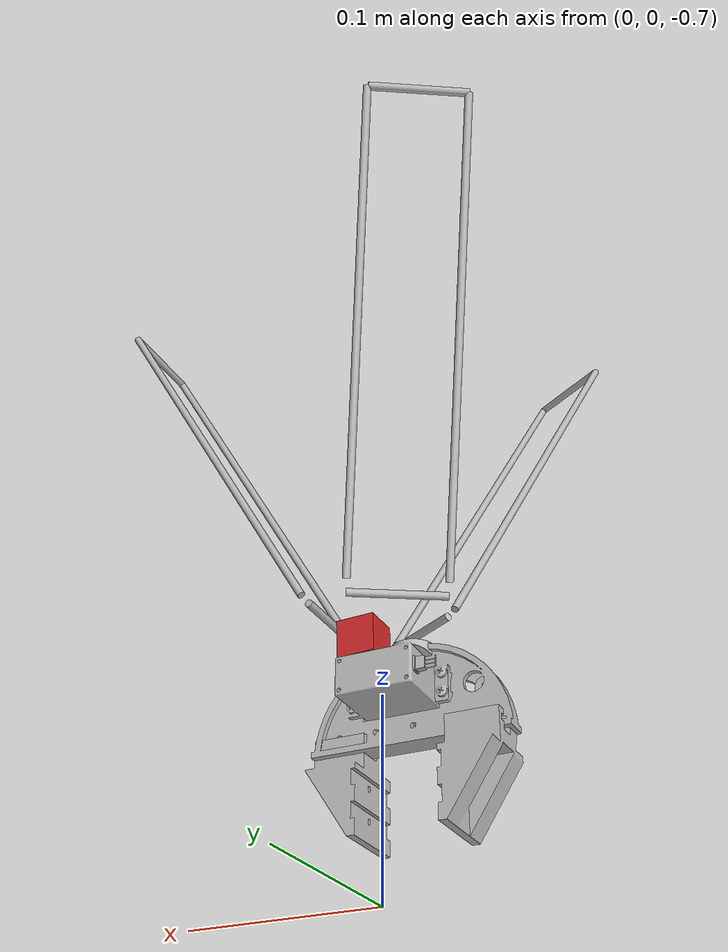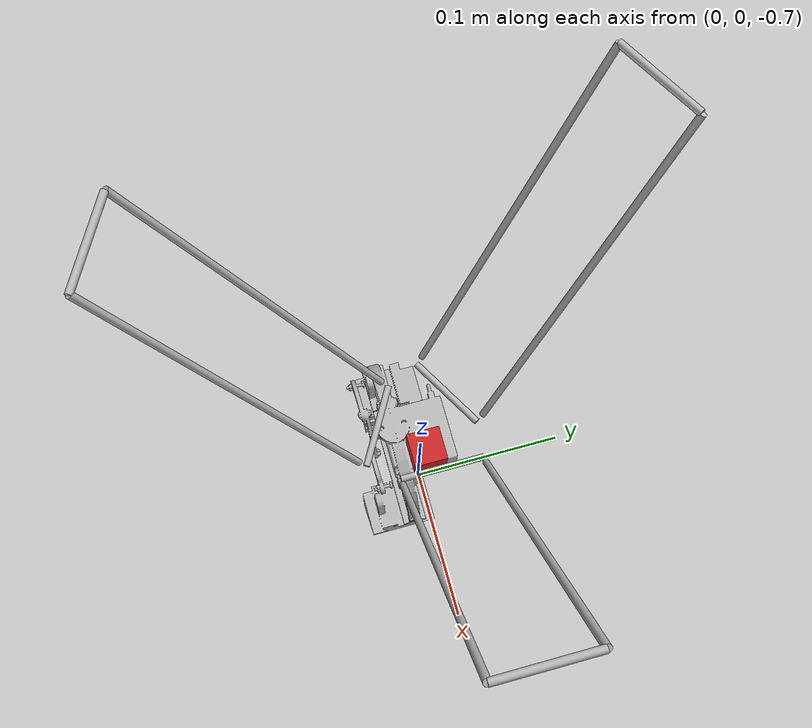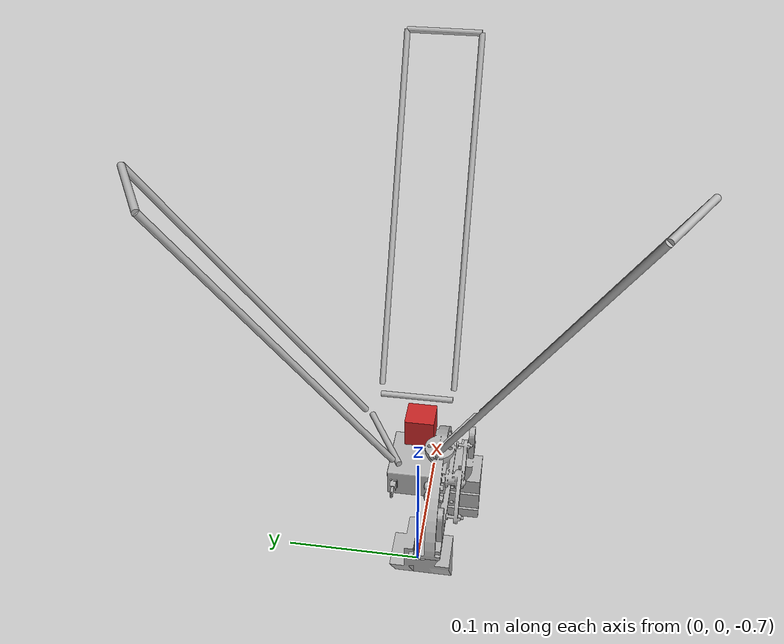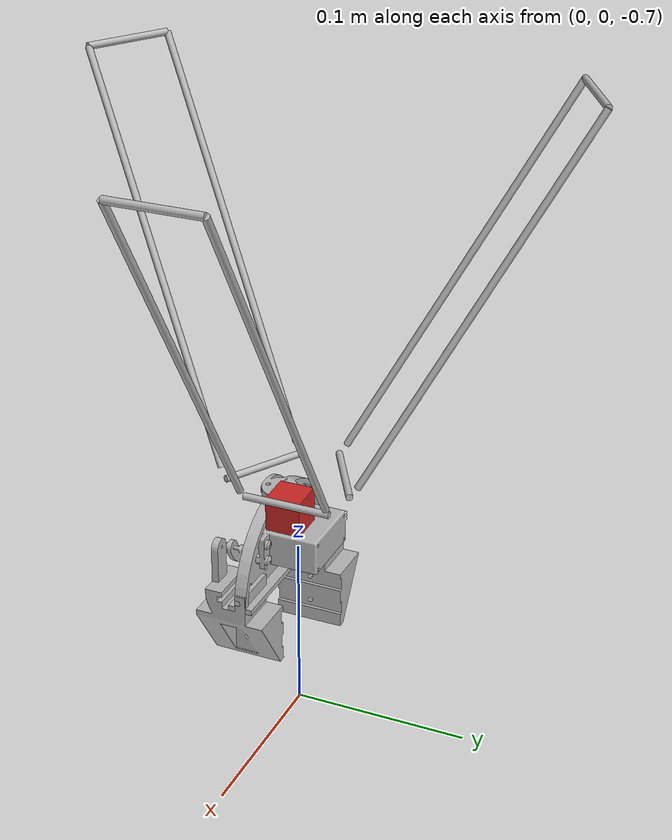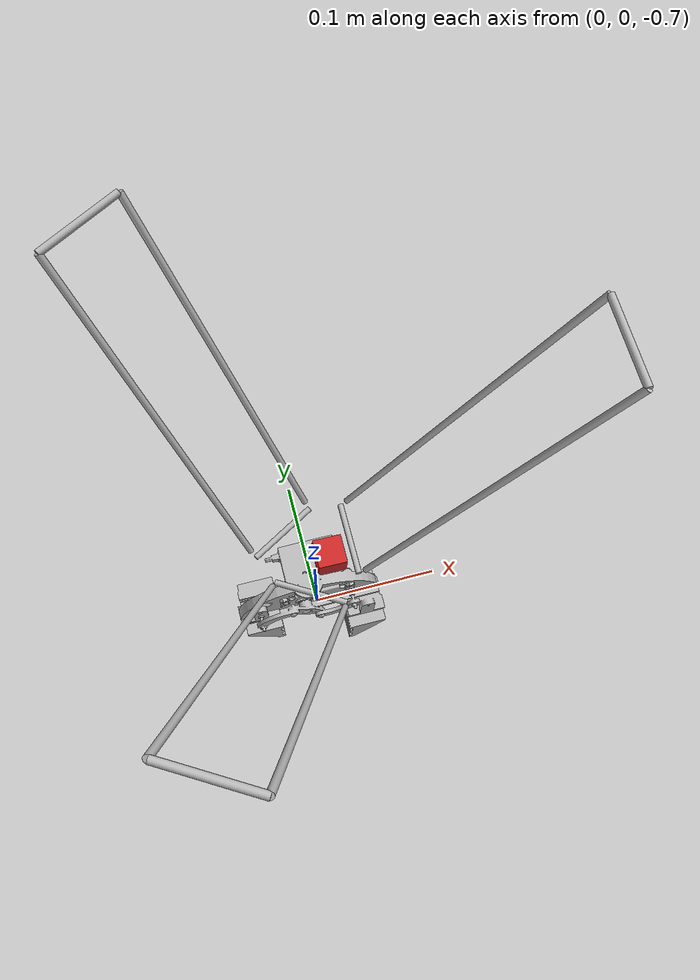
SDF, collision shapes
<sdf version='1.5'>
  <model name='FlyingDeltaArmLow_test'>
  <link name='con1'>
      <pose frame=''>0.1525 -0.000228 -0.346913429511 0.534996 -0 1.57</pose>
      <inertial>
        <pose frame=''>0.005 0 0 3.14159 1.57079 3.14159</pose>
        <mass>0.01</mass>
        <inertia>
          <ixx>2.093e-6</ixx>
          <ixy>0</ixy>
          <ixz>0</ixz>
          <iyy>2.093e-6</iyy>
          <iyz>0</iyz>
          <izz>2e-08</izz>
        </inertia>
      </inertial>
      <collision name='con1_collision'>
        <pose frame=''>0.005 0 0 3.14159 1.57079 3.14159</pose>
        <geometry>
          <cylinder>
            <length>0.05</length>
            <radius>0.002</radius>
          </cylinder>
        </geometry>
      </collision>
      <visual name='con1_visual'>
        <pose frame=''>0.005 0 0 3.14159 1.57079 3.14159</pose>
        <geometry>
          <cylinder>
            <length>0.05</length>
            <radius>0.002</radius>
          </cylinder>
        </geometry>
      </visual>
      <gravity>1</gravity>
    </link>

    <link name='lleg_12'>
      <pose frame=''>0.1525 0.029772 -0.346913429511 0.534996 -0 1.57</pose>
      <inertial>
        <pose frame=''>0 0 -0.12 0 -0 0</pose>
        <mass>0.012</mass>
        <inertia>
          <ixx>5.7612e-5</ixx>
          <ixy>0</ixy>
          <ixz>0</ixz>
          <iyy>5.7612e-5</iyy>
          <iyz>0</iyz>
          <izz>2.4e-08</izz>
        </inertia>
      </inertial>
      <collision name='lleg_12_collision'>
        <pose frame=''>0 0 -0.12 0 -0 0</pose>
        <geometry>
          <cylinder>
            <length>0.24</length>
            <radius>0.002</radius>
          </cylinder>
        </geometry>
      </collision>
      <visual name='lleg_12_visual'>
        <pose frame=''>0 0 -0.12 0 -0 0</pose>
        <geometry>
          <cylinder>
            <length>0.24</length>
            <radius>0.002</radius>
          </cylinder>
        </geometry>
      </visual>
      <gravity>1</gravity>
    </link>

<link name='lleg_1'>
      <pose frame=''>0.1525 -0.020228 -0.346913429511 0.534996 -0 1.57</pose>
      <inertial>
        <pose frame=''>0 0 -0.12 0 -0 0</pose>
        <mass>0.012</mass>
        <inertia>
          <ixx>5.7612e-5</ixx>
          <ixy>0</ixy>
          <ixz>0</ixz>
          <iyy>5.7612e-5</iyy>
          <iyz>0</iyz>
          <izz>2.4e-08</izz>
        </inertia>
      </inertial>
      <collision name='lleg_1_collision'>
        <pose frame=''>0 0 -0.12 0 -0 0</pose>
        <geometry>
          <cylinder>
            <length>0.24</length>
            <radius>0.002</radius>
          </cylinder>
        </geometry>
      </collision>
      <visual name='lleg_1_visual'>
        <pose frame=''>0 0 -0.12 0 -0 0</pose>
        <geometry>
          <cylinder>
            <length>0.24</length>
            <radius>0.002</radius>
          </cylinder>
        </geometry>
      </visual>
      <gravity>1</gravity>
    </link>

<link name='lleg_2'>
      <pose frame=''> -0.093767962 -0.121954874077  -0.346913429511 0.534996 -0 -0.524395</pose>
      <inertial>
        <pose frame=''>0 0 -0.12 0 -0 0</pose>
        <mass>0.012</mass>
        <inertia>
          <ixx>5.7612e-5</ixx>
          <ixy>0</ixy>
          <ixz>0</ixz>
          <iyy>5.7612e-5</iyy>
          <iyz>0</iyz>
          <izz>2.4e-08</izz>
        </inertia>
      </inertial>
      <collision name='lleg_2_collision'>
        <pose frame=''>0 0 -0.12 0 -0 0</pose>
        <geometry>
          <cylinder>
            <length>0.24</length>
            <radius>0.002</radius>
          </cylinder>
        </geometry>
      </collision>
      <visual name='lleg_2_visual'>
        <pose frame=''>0 0 -0.12 0 -0 0</pose>
        <geometry>
          <cylinder>
            <length>0.24</length>
            <radius>0.002</radius>
          </cylinder>
        </geometry>
      </visual>
      <gravity>1</gravity>
    </link>

<link name='lleg_3'>
      <pose frame=''>-0.05873204 0.1421828741 -0.346913429511 0.534996 -0 -2.61879</pose>
      <inertial>
        <pose frame=''>0 0 -0.12 0 -0 0</pose>
        <mass>0.012</mass>
        <inertia>
          <ixx>5.7612e-5</ixx>
          <ixy>0</ixy>
          <ixz>0</ixz>
          <iyy>5.7612e-5</iyy>
          <iyz>0</iyz>
          <izz>2.4e-08</izz>
        </inertia>
      </inertial>
      <collision name='lleg_3_collision'>
        <pose frame=''>0 0 -0.12 0 -0 0</pose>
        <geometry>
          <cylinder>
            <length>0.24</length>
            <radius>0.002</radius>
          </cylinder>
        </geometry>
      </collision>
      <visual name='lleg_3_visual'>
        <pose frame=''>0 0 -0.12 0 -0 0</pose>
        <geometry>
          <cylinder>
            <length>0.24</length>
            <radius>0.002</radius>
          </cylinder>
        </geometry>
      </visual>
      <gravity>1</gravity>
    </link>

    <link name='lleg_22'>
      <pose frame=''>-0.05046669 -0.146954874 -0.346913429511 0.534996 -0 -0.524395</pose>
      <inertial>
        <pose frame=''>0 0 -0.12 0 -0 0</pose>
        <mass>0.012</mass>
        <inertia>
          <ixx>5.7612e-5</ixx>
          <ixy>0</ixy>
          <ixz>0</ixz>
          <iyy>5.7612e-5</iyy>
          <iyz>0</iyz>
          <izz>2.4e-08</izz>
        </inertia>
      </inertial>
      <collision name='lleg_22_collision'>
        <pose frame=''>0 0 -0.12 0 -0 0</pose>
        <geometry>
          <cylinder>
            <length>0.24</length>
            <radius>0.002</radius>
          </cylinder>
        </geometry>
      </collision>
      <visual name='lleg_22_visual'>
        <pose frame=''>0 0 -0.12 0 -0 0</pose>
        <geometry>
          <cylinder>
            <length>0.24</length>
            <radius>0.002</radius>
          </cylinder>
        </geometry>
      </visual>
      <gravity>1</gravity>
    </link>

  <link name='lleg_32'>
      <pose frame=''>-0.10203331 0.1171828741 -0.346913429511 0.534996 -0 -2.61879</pose>
      <inertial>
        <pose frame=''>0 0 -0.12 0 -0 0</pose>
        <mass>0.012</mass>
        <inertia>
          <ixx>5.7612e-5</ixx>
          <ixy>0</ixy>
          <ixz>0</ixz>
          <iyy>5.7612e-5</iyy>
          <iyz>0</iyz>
          <izz>2.4e-08</izz>
        </inertia>
      </inertial>
      <collision name='lleg_32_collision'>
        <pose frame=''>0 0 -0.12 0 -0 0</pose>
        <geometry>
          <cylinder>
            <length>0.24</length>
            <radius>0.002</radius>
          </cylinder>
        </geometry>
      </collision>
      <visual name='lleg_32_visual'>
        <pose frame=''>0 0 -0.12 0 -0 0</pose>
        <geometry>
          <cylinder>
            <length>0.24</length>
            <radius>0.002</radius>
          </cylinder>
        </geometry>
      </visual>
      <gravity>1</gravity>
    </link>

    <link name='con13'>
      <pose frame=''>0.025857 0.029979 -0.558738 0.534996 -0 1.57</pose>
      <inertial>
        <pose frame=''>-0.025 0 0 3.14159 1.57079 3.14159</pose>
        <mass>0.01</mass>
        <inertia>
          <ixx>2.093e-6</ixx>
          <ixy>0</ixy>
          <ixz>0</ixz>
          <iyy>2.093e-6</iyy>
          <iyz>0</iyz>
          <izz>2e-08</izz>
        </inertia>
      </inertial>
      <collision name='con13_collision'>
        <pose frame=''>-0.025 0 0 3.14159 1.57079 3.14159</pose>
        <geometry>
          <cylinder>
            <length>0.05</length>
            <radius>0.002</radius>
          </cylinder>
        </geometry>
      </collision>
      <visual name='con13_visual'>
        <pose frame=''>-0.025 0 0 3.14159 1.57079 3.14159</pose>
        <geometry>
          <cylinder>
            <length>0.05</length>
            <radius>0.002</radius>
          </cylinder>
        </geometry>
      </visual>
      <gravity>1</gravity>
    </link>

    <link name='low_base'>
      <pose frame=''>0.025857 0.029979 -0.558738 0.034996 0 1.57</pose>
      <inertial>
        <pose frame=''>-0.03 0.03 0 0 -0 0</pose>
        <mass>0.1</mass>
        <inertia>
          <ixx>2.67e-04</ixx>
          <ixy>0</ixy>
          <ixz>0</ixz>
          <iyy>2.67e-04</iyy>
          <iyz>0</iyz>
          <izz>2.67e-04</izz>
        </inertia>
      </inertial>
      <visual name='low_base_visual_visual'>
        <pose frame=''>-0.07 -0.015 -0.012 0 -0 0</pose>
        <geometry>
          <mesh>
            <scale>0.001 0.001 0.001</scale>
            <uri>model://FlyingDelta/meshes/Platform.STL</uri>
          </mesh>
        </geometry>
        <material>
          <script>
            <uri>file://media/materials/scripts/gazebo.material</uri>
            <name>Gazebo/Red</name>
          </script>
        </material>
      </visual>
      <collision name='low_base_visual_visual_collision'>
       <pose frame=''>-0.03 0.015 -0.012 0 -0 0</pose>
        <geometry>
          <box>
            <size>0.02 0.02 0.02</size>
          </box>
        </geometry>
      </collision>
      <gravity>1</gravity>
    </link>

    <include>
      <uri>model://gripper1</uri>
      <pose>-0.01 -0.015 -0.57 1.5708 0 0</pose>
    </include>
    <joint name="marker_fixed" type="fixed">
      <parent>low_base</parent>
      <child>gripper1::base_link</child>
    </joint>

    <link name='con2'>
      <pose frame=''>-0.076052546208 -0.132182874077 -0.346913429511 0.534996 -0 -0.524395</pose>
      <inertial>
        <pose frame=''>0.005 0 0 3.14159 1.57079 3.14159</pose>
        <mass>0.01</mass>
        <inertia>
          <ixx>2.093e-6</ixx>
          <ixy>0</ixy>
          <ixz>0</ixz>
          <iyy>2.093e-6</iyy>
          <iyz>0</iyz>
          <izz>2e-08</izz>
        </inertia>
      </inertial>
      <collision name='con2_collision'>
        <pose frame=''>0.005 0 0 3.14159 1.57079 3.14159</pose>
        <geometry>
          <cylinder>
            <length>0.05</length>
            <radius>0.002</radius>
          </cylinder>
        </geometry>
      </collision>
      <visual name='con2_visual'>
        <pose frame=''>0.005 0 0 3.14159 1.57079 3.14159</pose>
        <geometry>
          <cylinder>
            <length>0.05</length>
            <radius>0.002</radius>
          </cylinder>
        </geometry>
      </visual>
      <gravity>0</gravity>
    </link>

    <link name='con23'>
      <pose frame=''>0.01303407558 -0.037382319 -0.558738 0.534996 -0 -0.524395</pose>
      <inertial>
        <pose frame=''>-0.025 0 0 3.14159 1.57079 3.14159</pose>
        <mass>0.01</mass>
        <inertia>
          <ixx>2.093e-6</ixx>
          <ixy>0</ixy>
          <ixz>0</ixz>
          <iyy>2.093e-6</iyy>
          <iyz>0</iyz>
          <izz>2e-08</izz>
        </inertia>
      </inertial>
      <collision name='con23_collision'>
        <pose frame=''>-0.025 0 0 3.14159 1.57079 3.14159</pose>
        <geometry>
          <cylinder>
            <length>0.05</length>
            <radius>0.002</radius>
          </cylinder>
        </geometry>
      </collision>
      <visual name='con23_visual'>
        <pose frame=''>-0.025 0 0 3.14159 1.57079 3.14159</pose>
        <geometry>
          <cylinder>
            <length>0.05</length>
            <radius>0.002</radius>
          </cylinder>
        </geometry>
      </visual>
      <gravity>1</gravity>
    </link>

    <link name='con3'>
      <pose frame=''>-0.0764474538 0.13195487408 -0.346913429511 0.534996 -0 -2.61879</pose>
      <inertial>
        <pose frame=''>0.005 0 0 3.14159 1.57079 3.14159</pose>
        <mass>0.01</mass>
        <inertia>
          <ixx>2.093e-6</ixx>
          <ixy>0</ixy>
          <ixz>0</ixz>
          <iyy>2.093e-6</iyy>
          <iyz>0</iyz>
          <izz>2e-08</izz>
        </inertia>
      </inertial>
      <collision name='con3_collision'>
        <pose frame=''>0.005 0 0 3.14159 1.57079 3.14159</pose>
        <geometry>
          <cylinder>
            <length>0.05</length>
            <radius>0.002</radius>
          </cylinder>
        </geometry>
      </collision>
      <visual name='con3_visual'>
        <pose frame=''>0.005 0 0 3.14159 1.57079 3.14159</pose>
        <geometry>
          <cylinder>
            <length>0.05</length>
            <radius>0.002</radius>
          </cylinder>
        </geometry>
      </visual>
      <gravity>1</gravity>
    </link>

    <link name='con33'>
      <pose frame=''>-0.0388911 0.007403319 -0.558738 0.534996 -0 -2.61879</pose>
      <inertial>
        <pose frame=''>-0.025 0 0 3.14159 1.57079 3.14159</pose>
        <mass>0.01</mass>
        <inertia>
          <ixx>2.093e-6</ixx>
          <ixy>0</ixy>
          <ixz>0</ixz>
          <iyy>2.093e-6</iyy>
          <iyz>0</iyz>
          <izz>2e-08</izz>
        </inertia>
      </inertial>
      <collision name='con33_collision'>
        <pose frame=''>-0.025 0 0 3.14159 1.57079 3.14159</pose>
        <geometry>
          <cylinder>
            <length>0.05</length>
            <radius>0.002</radius>
          </cylinder>
        </geometry>
      </collision>
      <visual name='con33_visual'>
        <pose frame=''>-0.025 0 0 3.14159 1.57079 3.14159</pose>
        <geometry>
          <cylinder>
            <length>0.05</length>
            <radius>0.002</radius>
          </cylinder>
        </geometry>
      </visual>
      <gravity>1</gravity>
    </link>

    <joint name='con2_lleg_3' type='revolute'>
      <child>lleg_32</child>
      <parent>con3</parent>
      <axis>
        <xyz>0.429542 -0.745358 0.509838</xyz>
        <limit>
          <lower>-1e+16</lower>
          <upper>1e+16</upper>
        </limit>
        <dynamics>
      	  <damping>0.001</damping>
      	  <friction>0</friction>
          <spring_reference>0</spring_reference>
          <spring_stiffness>0</spring_stiffness>
        </dynamics>
        <use_parent_model_frame>1</use_parent_model_frame>
      </axis>
    </joint>

    <joint name='con33_lleg_3' type='revolute'>
      <child>con33</child>
      <parent>lleg_32</parent>
      <axis>
        <xyz>0.429542 -0.745358 0.509838</xyz>
        <limit>
          <lower>-1e+16</lower>
          <upper>1e+16</upper>
        </limit>
        <dynamics>
      	  <damping>0.001</damping>
      	  <friction>0</friction>
          <spring_reference>0</spring_reference>
          <spring_stiffness>0</spring_stiffness>
        </dynamics>
        <use_parent_model_frame>1</use_parent_model_frame>
      </axis>
    </joint>

    <joint name='con_lleg_3' type='revolute'>
      <child>lleg_3</child>
      <parent>con3</parent>
      <axis>
        <xyz>0.429542 -0.745358 0.509838</xyz>
        <limit>
          <lower>-1e+16</lower>
          <upper>1e+16</upper>
        </limit>
        <dynamics>
      	  <damping>0.001</damping>
      	  <friction>0</friction>
          <spring_reference>0</spring_reference>
          <spring_stiffness>0</spring_stiffness>
        </dynamics>
        <use_parent_model_frame>1</use_parent_model_frame>
      </axis>
    </joint>

    <joint name='con33_lleg_32' type='revolute'>
      <child>con33</child>
      <parent>lleg_3</parent>
      <pose frame=''>-0.05 0 0 0 -0 0</pose>
      <axis>
        <xyz> 0.509838 0.86027 0.000685  </xyz>
        <limit>
          <lower>-100</lower>
          <upper>100</upper>
        </limit>
        <dynamics>
          <spring_reference>0</spring_reference>
          <spring_stiffness>0</spring_stiffness>
      	  <damping>0.001</damping>
      	  <friction>0</friction>
        </dynamics>
        <use_parent_model_frame>1</use_parent_model_frame>
      </axis>
    </joint>

    <joint name='con23_lleg_22' type='revolute'>
      <child>con23</child>
      <parent>lleg_2</parent>
      <pose frame=''>-0.05 0 0 0 -0 0</pose>
      <axis>
        <xyz> 0.509838 0.86027 0.000685 </xyz>
        <limit>
          <lower>-100</lower>
          <upper>100</upper>
        </limit>
        <dynamics>
          <spring_reference>0</spring_reference>
          <spring_stiffness>0</spring_stiffness>
      	  <damping>0.001</damping>
      	  <friction>0</friction>
        </dynamics>
        <use_parent_model_frame>1</use_parent_model_frame>
      </axis>
    </joint>
    <joint name='con_lleg_2' type='revolute'>
      <child>lleg_2</child>
      <parent>con2</parent>
      <axis>
        <xyz>0.430728 0.744673 0.509838</xyz>
        <limit>
          <lower>-1e+16</lower>
          <upper>1e+16</upper>
        </limit>
        <dynamics>
          <spring_reference>0</spring_reference>
          <spring_stiffness>0</spring_stiffness>
      	  <damping>0.001</damping>
      	  <friction>0</friction>
        </dynamics>
        <use_parent_model_frame>1</use_parent_model_frame>
      </axis>
    </joint>
    <joint name='con2_lleg_2' type='revolute'>
      <child>lleg_22</child>
      <parent>con2</parent>
      <axis>
        <xyz>0.430728 0.744673 0.509838</xyz>
        <limit>
          <lower>-1e+16</lower>
          <upper>1e+16</upper>
        </limit>
        <dynamics>
          <spring_reference>0</spring_reference>
          <spring_stiffness>0</spring_stiffness>
      	  <damping>0.001</damping>
      	  <friction>0</friction>
        </dynamics>
        <use_parent_model_frame>1</use_parent_model_frame>
      </axis>
    </joint>

    <joint name='con23_lleg_2' type='revolute'>
      <child>con23</child>
      <parent>lleg_22</parent>
      <axis>
        <xyz>0.430728 0.744673 0.509838</xyz>
        <limit>
          <lower>-1e+16</lower>
          <upper>1e+16</upper>
        </limit>
        <dynamics>
      	  <damping>0.001</damping>
      	  <friction>0</friction>
          <spring_reference>0</spring_reference>
          <spring_stiffness>0</spring_stiffness>
        </dynamics>
        <use_parent_model_frame>1</use_parent_model_frame>
      </axis>
    </joint>

    <joint name='con13_lleg_1' type='revolute'>
      <child>con13</child>
      <parent>lleg_12</parent>
      <axis>
        <xyz>-0.86027 0.000685 0.509838</xyz>
        <limit>
          <lower>-1e+16</lower>
          <upper>1e+16</upper>
        </limit>
        <dynamics>
          <spring_reference>0</spring_reference>
          <spring_stiffness>0</spring_stiffness>
      	  <damping>0.001</damping>
      	  <friction>0</friction>
        </dynamics>
        <use_parent_model_frame>1</use_parent_model_frame>
      </axis>
    </joint>
    <joint name='con_lleg_1' type='revolute'>
      <child>lleg_1</child>
      <parent>con1</parent>
      <axis>
        <xyz>-0.86027 0.000685 0.509838</xyz>
        <limit>
          <lower>-1e+16</lower>
          <upper>1e+16</upper>
        </limit>
        <dynamics>
          <spring_reference>0</spring_reference>
          <spring_stiffness>0</spring_stiffness>
      	  <damping>0.001</damping>
      	  <friction>0</friction>
        </dynamics>
        <use_parent_model_frame>1</use_parent_model_frame>
      </axis>
    </joint>
        <joint name='con2_lleg_1' type='revolute'>
      <child>lleg_12</child>
      <parent>con1</parent>
      <axis>
        <xyz>-0.86027 0.000685 0.509838</xyz>
        <limit>
          <lower>-1e+16</lower>
          <upper>1e+16</upper>
        </limit>
        <dynamics>
          <spring_reference>0</spring_reference>
          <spring_stiffness>0</spring_stiffness>
      	  <damping>0.001</damping>
      	  <friction>0</friction>
        </dynamics>
        <use_parent_model_frame>1</use_parent_model_frame>
      </axis>
    </joint>
    <joint name='con13_lleg_12' type='revolute'>
      <child>con13</child>
      <parent>lleg_1</parent>
      <pose frame=''>-0.05 0 0 0 -0 0</pose>
      <axis>
        <xyz> 0.509838 0.86027 0.000685 </xyz>
        <limit>
          <lower>-100</lower>
          <upper>100</upper>
        </limit>
        <dynamics>
          <spring_reference>0</spring_reference>
          <spring_stiffness>0</spring_stiffness>
      	  <damping>0.001</damping>
      	  <friction>0</friction>
        </dynamics>
        <use_parent_model_frame>1</use_parent_model_frame>
      </axis>
    </joint>

    <joint name='lleg1_base' type='revolute'>
      <child>low_base</child>
      <parent>con13</parent>
      <axis>
        <xyz> 0 1 0 </xyz>
        <limit>
          <lower>-1e+16</lower>
          <upper>1e+16</upper>
        </limit>
        <dynamics>
          <spring_reference>0</spring_reference>
          <spring_stiffness>0</spring_stiffness>
        </dynamics>
        <use_parent_model_frame>1</use_parent_model_frame>
      </axis>
    </joint>

    <joint name='lleg2_base' type='revolute'>
      <child>con23</child>
      <parent>low_base</parent>
      <pose frame=''>0 0 0 0 -0 0</pose>
      <axis>
        <xyz> 0.86027 -0.509838 0.000685</xyz>
        <limit>
          <lower>-100</lower>
          <upper>100</upper>
        </limit>
        <dynamics>
          <spring_reference>0</spring_reference>
          <spring_stiffness>0</spring_stiffness>
        </dynamics>
        <use_parent_model_frame>1</use_parent_model_frame>
      </axis>
    </joint>

    <joint name='lleg3_base' type='revolute'>
      <child>con33</child>
      <parent>low_base</parent>
      <pose frame=''>0 0 0 0 -0 0</pose>
      <axis>
        <xyz>0.86027 -0.509838 0.000685</xyz>
        <limit>
          <lower>-100</lower>
          <upper>100</upper>
        </limit>
        <dynamics>
          <spring_reference>0</spring_reference>
          <spring_stiffness>0</spring_stiffness>
        </dynamics>
        <use_parent_model_frame>1</use_parent_model_frame>
      </axis>
    </joint>
    <static>0</static>
    <self_collide>0</self_collide>
    <enable_wind>0</enable_wind>

  </model>
</sdf>

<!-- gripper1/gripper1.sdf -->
<sdf version='1.7'>
  <model name='gripper1'>
    <link name='base_link'>
      <inertial>
        <pose>0.001654 -0.029913 -0.001386 0 -0 0</pose>
        <mass>0.01</mass>
        <inertia>
          <ixx>4.11249e-05</ixx>
          <ixy>8.0148e-07</ixy>
          <ixz>2.68911e-08</ixz>
          <iyy>0.000111475</iyy>
          <iyz>-6.74462e-07</iyz>
          <izz>0.000142498</izz>
        </inertia>
      </inertial>
      <collision name='base_link_collision'>
        <pose>0 0 0 0 -0 0</pose>
        <geometry>
          <mesh>
            <scale>1 1 1</scale>
            <uri>model://gripper1/meshes/base_link.STL</uri>
          </mesh>
        </geometry>
      </collision>
      <visual name='base_link_visual'>
        <pose>0 0 0 0 -0 0</pose>
        <geometry>
          <mesh>
            <scale>1 1 1</scale>
            <uri>model://gripper1/meshes/base_link.STL</uri>
          </mesh>
        </geometry>
      </visual>
    </link>
    <joint name='left_joint' type='prismatic'>
      <pose relative_to='base_link'>-0.051103 -0.052 -0.0065 0 -0 0</pose>
      <parent>base_link</parent>
      <child>left_link</child>
      <axis>
        <xyz>-1 0 0</xyz>
        <limit>
          <lower>-0.015</lower>
          <upper>0.01</upper>
          <effort>50</effort>
          <velocity>0.1</velocity>
        </limit>
        <dynamics>
          <spring_reference>0</spring_reference>
          <spring_stiffness>0</spring_stiffness>
      	  <damping>0</damping>
      	  <friction>0.1</friction>
        </dynamics>
      </axis>
    </joint>
    <link name='left_link'>
      <pose relative_to='left_joint'>0 0 0 0 -0 0</pose>
      <inertial>
        <pose>0.026892 -0.01407 0.008606 0 -0 0</pose>
        <mass>0.01</mass>
        <inertia>
          <ixx>9.6439e-05</ixx>
          <ixy>3.46376e-06</ixy>
          <ixz>3.80734e-07</ixz>
          <iyy>4.79336e-05</iyy>
          <iyz>-8.70306e-06</iyz>
          <izz>7.99202e-05</izz>
        </inertia>
      </inertial>
      <collision name='left_link_collision'>
        <pose>0 0 0 0 -0 0</pose>
        <geometry>
          <mesh>
            <scale>1 1 1</scale>
            <uri>model://gripper1/meshes/left_link.STL</uri>
          </mesh>
        </geometry>
          <surface>
            <friction>
              <ode>
                <mu>30</mu>
                <mu2>30</mu2>
              </ode>
            </friction>
          </surface>
      </collision>
      <visual name='left_link_visual'>
        <pose>0 0 0 0 -0 0</pose>
        <geometry>
          <mesh>
            <scale>1 1 1</scale>
            <uri>model://gripper1/meshes/left_link.STL</uri>
          </mesh>
        </geometry>
      </visual>
    </link>
    <joint name='right_joint' type='prismatic'>
      <pose relative_to='base_link'>0.052897 -0.052 0.0075 3.14159 -0 3.14159</pose>
      <parent>base_link</parent>
      <child>right_link</child>
      <axis>
        <xyz>1 0 0</xyz>
        <limit>
          <lower>-0.01</lower>
          <upper>0.015</upper>
          <effort>50</effort>
          <velocity>0.1</velocity>
        </limit>
        <dynamics>
          <spring_reference>0</spring_reference>
          <spring_stiffness>0</spring_stiffness>
      	  <damping>0</damping>
      	  <friction>0.1</friction>
        </dynamics>
      </axis>
    </joint>
    <link name='right_link'>
      <pose relative_to='right_joint'>0 0 0 0 -0 0</pose>
      <inertial>
        <pose>0.025334 -0.016463 0.005554 0 -0 0</pose>
        <mass>0.01</mass>
        <inertia>
          <ixx>6.82429e-05</ixx>
          <ixy>8.57233e-06</ixy>
          <ixz>-7.94682e-07</ixz>
          <iyy>3.63588e-05</iyy>
          <iyz>5.33025e-06</iyz>
          <izz>5.21112e-05</izz>
        </inertia>
      </inertial>
      <collision name='right_link_collision'>
        <pose>0 0 0 0 -0 0</pose>
        <geometry>
          <mesh>
            <scale>1 1 1</scale>
            <uri>model://gripper1/meshes/right_link.STL</uri>
          </mesh>
        </geometry>
      </collision>
      <visual name='right_link_visual'>
        <pose>0 0 0 0 -0 0</pose>
        <geometry>
          <mesh>
            <scale>1 1 1</scale>
            <uri>model://gripper1/meshes/right_link.STL</uri>
          </mesh>
        </geometry>
          <surface>
            <friction>
              <ode>
                <mu>30</mu>
                <mu2>30</mu2>
              </ode>
            </friction>
          </surface>
      </visual>
    </link>
    <!-- 在gazebo仿真模型文件中添加： -->
      <plugin name="p3d_base_controller" filename="libgazebo_ros_p3d.so">
        <alwaysOn>true</alwaysOn>
        <updateRate>50.0</updateRate>
        <bodyName>right_link</bodyName>
        <topicName>gripper_right_link_pose_gt</topicName>
        <gaussianNoise>0.0</gaussianNoise>
        <frameName>world</frameName>
        <xyzOffset>0 0 0</xyzOffset>
        <rpyOffset>0 0 0</rpyOffset>
      </plugin>
      <plugin name="gazebo_grasp_fix" filename="libgazebo_grasp_fix.so">
        <arm>
          <arm_name>ur5_gripper</arm_name>
          <palm_link>base_link</palm_link>
          <gripper_link>left_link</gripper_link>
          <gripper_link>right_link</gripper_link>
        </arm>
        <forces_angle_tolerance>150</forces_angle_tolerance>
        <update_rate>130</update_rate>
        <grip_count_threshold>2</grip_count_threshold>
        <max_grip_count>8</max_grip_count>
        <release_tolerance>0.01</release_tolerance>
        <disable_collisions_on_attach>true</disable_collisions_on_attach>
        <contact_topic>__default_topic__</contact_topic>
     </plugin>

  <plugin name="gripper_control1_1" filename="libgripper_plugin1_1.so"/>
  <plugin name="gripper_control1_2" filename="libgripper_plugin1_2.so"/>
  </model>
</sdf>
